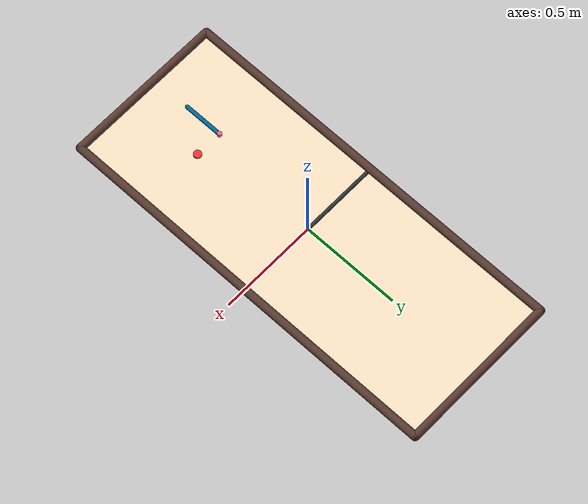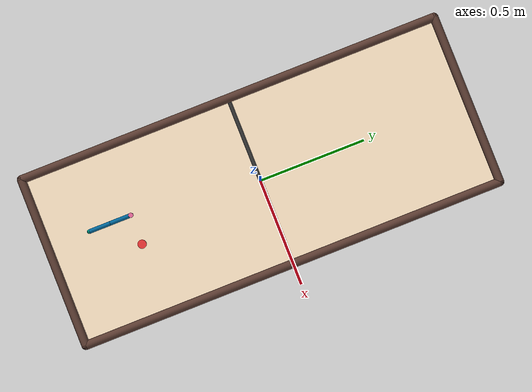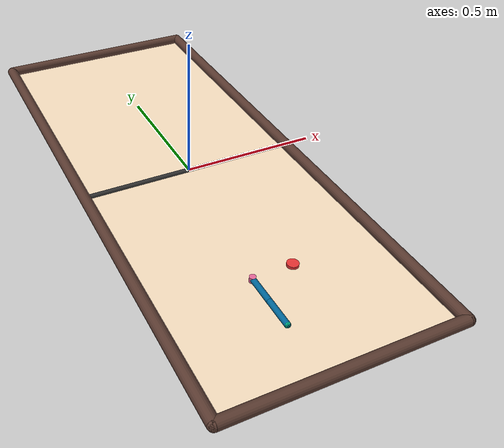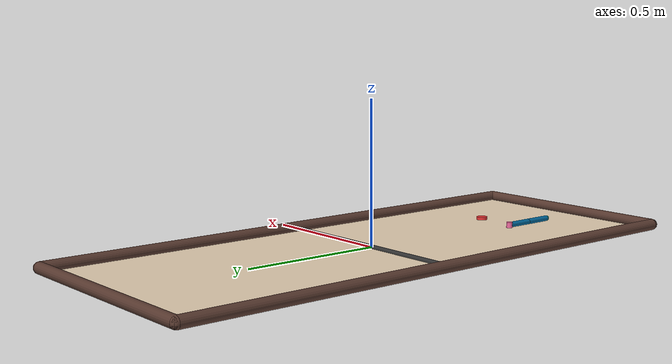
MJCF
<mujoco model="shuffleboard">
	<compiler angle="radian" inertiafromgeom="true"/>

	<visual>
		<rgba fog="0.5 0.5 0.5 1"/>
	</visual>

	<default>
		<joint armature="1" damping="1" limited="true"/>
		<geom contype="0" conaffinity="0" friction="1 0.1 0.1" rgba="0.7 0.7 0 1"/>
	</default>

	<option gravity="0 0 -9.81" integrator="RK4" timestep="0.01"/>

	<worldbody>

		<!-- Arena -->
		<geom contype="1" name="ground" pos="0 0 0" rgba="0.96 0.87 0.75 1" size=".4 1 10" type="plane"/>
		<geom contype="1" fromto="-.4 -1 .01 .4 -1 .01" name="sideS" rgba="0.35 0.23 0.19 1" size=".02" type="capsule"/>
		<geom contype="1" fromto=" .4 -1 .01 .4  1 .01" name="sideE" rgba="0.35 0.23 0.19 1" size=".02" type="capsule"/>
		<geom contype="1" fromto="-.4  1 .01 .4  1 .01" name="sideN" rgba="0.35 0.23 0.19 1" size=".02" type="capsule"/>
		<geom contype="1" fromto="-.4 -1 .01 -.4 1 .01" name="sideW" rgba="0.35 0.23 0.19 1" size=".02" type="capsule"/>

		<!-- Arm -->
		<geom fromto="-.07 -.6 0 -.07 -.6 0.02" name="root" rgba="0.9 0.4 0.6 1" size=".011" type="cylinder"/>
		<body name="body0" pos="-.07 -.6 .01">
			<geom contype="1" fromto="0 0 0 0 -0.1 0" name="link0" rgba="0.0 0.4 0.6 1" size=".01" type="capsule"/>
			<joint axis="0 0 1" limited="false" name="joint0" pos="0 0 0" type="hinge"/>
			<body name="body1" pos="0 -0.1 0">
				<joint axis="0 0 1" limited="true" name="joint1" pos="0 0 0" range="-3.0 3.0" type="hinge"/>
				<geom contype="1" fromto="0 0 0 0 -0.1 0" name="link1" rgba="0.0 0.4 0.6 1" size=".01" type="capsule"/>
				<body name="fingertip" pos="0 -0.1 0">
					<geom contype="1" name="fingertip" pos="0 0 0" rgba="0.0 0.8 0.6 1" size=".01" type="sphere"/>
				</body>
			</body>
		</body>

		<!-- Puck -->
		<body name="puck" pos=".07 -.6 .01">
			<joint axis="1 0 0" damping="0.6" name="puck_x" pos="0 0 0 " range="-2 2" type="slide"/>
			<joint axis="0 1 0" damping="0.6" name="puck_y" pos="0 0 0 " range="-2 2" type="slide"/>
			<geom conaffinity="1" name="puck" fromto="0 0 0 0 0 0.01" rgba="0.9 0.2 0.2 1" size=".02" type="cylinder"/>
		</body>

		<!-- Target -->
		<body name="target" pos="0 0 0">
			<geom name="target" fromto="-.4 0 0 .4 0 0" rgba="0.2 0.2 0.2 1" size=".009" type="capsule"/>
		</body>

	</worldbody>

	<actuator>
		<motor ctrllimited="true" ctrlrange="-1.0 1.0" gear="30.0" joint="joint0"/>
		<motor ctrllimited="true" ctrlrange="-1.0 1.0" gear="30.0" joint="joint1"/>
	</actuator>

</mujoco>
